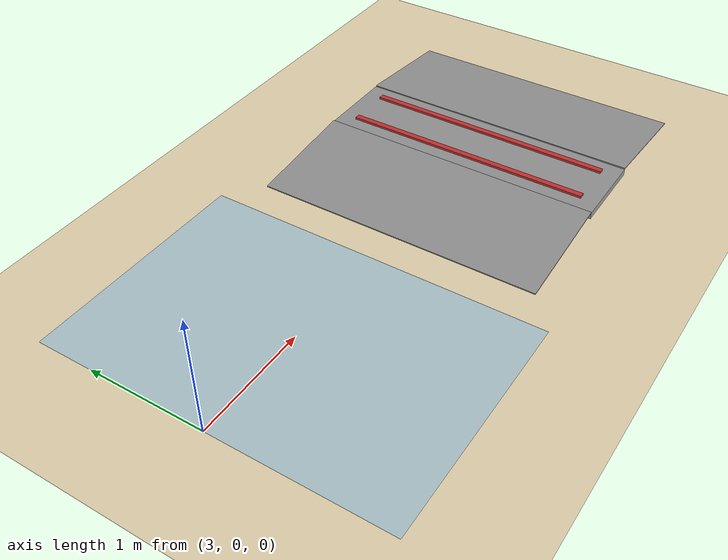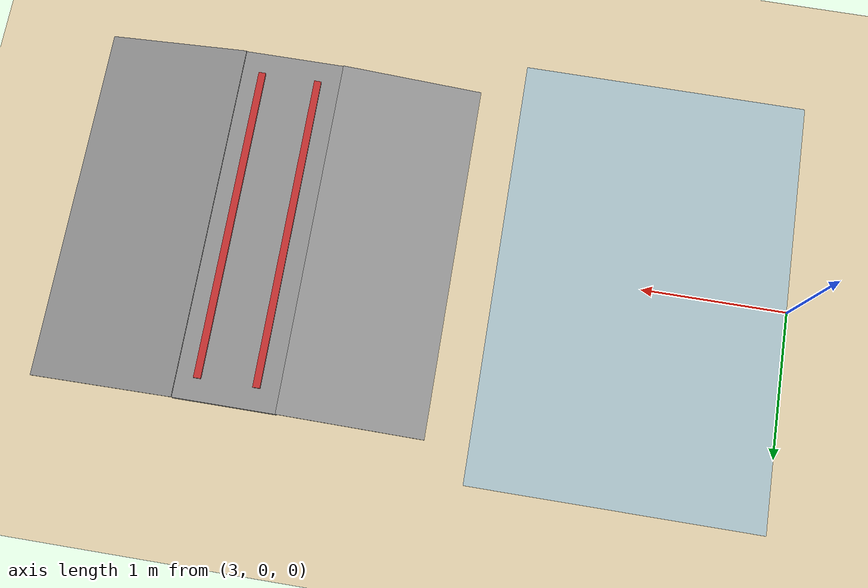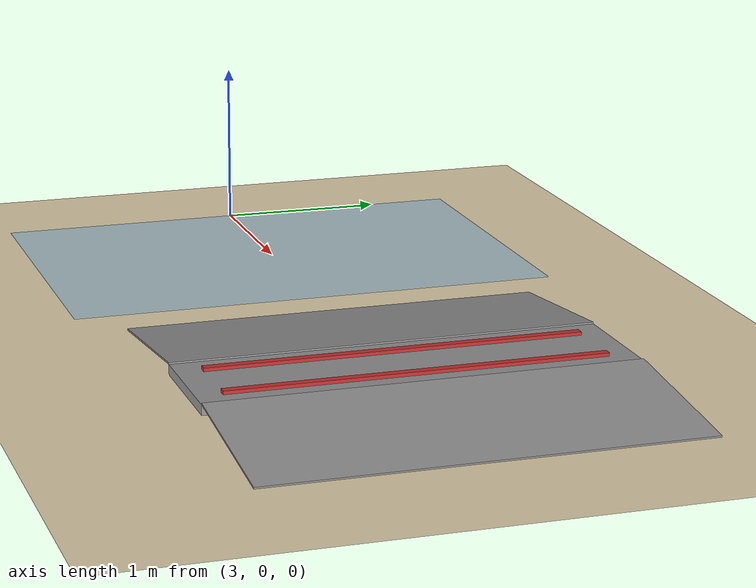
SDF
<sdf version="1.6">
 <world name="default">
  <plugin filename="gz-sim-physics-system" name="gz::sim::systems::Physics">
   <engine><filename>libgz-physics-dartsim-plugin.so</filename></engine>
  </plugin>
  <plugin filename="gz-sim-user-commands-system" name="gz::sim::systems::UserCommands"/>
  <plugin filename="gz-sim-scene-broadcaster-system" name="gz::sim::systems::SceneBroadcaster"/>
  <plugin filename="gz-sim-sensors-system" name="gz::sim::systems::Sensors">
   <render_engine>ogre2</render_engine>
  </plugin>
  <plugin filename="gz-sim-imu-system" name="gz::sim::systems::Imu"/>
  <gravity>0.0 0.0 -9.8</gravity>
  <physics name="8ms" type="dartsim">
   <max_step_size>0.008</max_step_size>
   <real_time_factor>1.0</real_time_factor>
  </physics>
  <scene>
   <ambient>0.4 0.4 0.4 1</ambient>
   <background>0.7 0.7 0.7 1</background>
   <shadows>false</shadows>
   <grid>false</grid>
   <origin_visual>false</origin_visual>
  </scene>
  <model name="ground_plane">
   <static>true</static>
   <link name="link">
    <collision name="collision">
     <geometry><plane><normal>0 0 1</normal><size>100 100</size></plane></geometry>
     <surface><friction><torsional><coefficient>0.0</coefficient></torsional></friction></surface>
    </collision>
    <visual name="visual">
     <geometry><plane><normal>0 0 1</normal><size>100 100</size></plane></geometry>
     <material>
      <ambient>0.92 0.85 0.7 1</ambient>
      <diffuse>0.92 0.85 0.7 1</diffuse>
      <specular>0.1 0.1 0.1 1</specular>
     </material>
    </visual>
   </link>
  </model>
  <model name="slippery_patch">
   <static>true</static>
   <pose>4 0 0.001 0 0 0</pose>
   <link name="link">
    <collision name="collision">
     <geometry><box><size>2.0 3.0 0.002</size></box></geometry>
     <surface><friction><ode><mu>0.001</mu><mu2>0.001</mu2></ode></friction></surface>
    </collision>
    <visual name="visual">
     <geometry><box><size>2.0 3.0 0.002</size></box></geometry>
     <material><ambient>0.6 0.8 0.95 0.6</ambient><diffuse>0.6 0.8 0.95 0.6</diffuse></material>
    </visual>
   </link>
  </model>
  <model name="small_ramp_up">
   <static>true</static>
   <pose>5.797260948 0 0.057236841 0 -0.10471975512 0</pose>
   <link name="link">
    <collision name="collision"><geometry><box><size>1.0 2.5 0.01</size></box></geometry></collision>
    <visual name="visual">
     <geometry><box><size>1.0 2.5 0.01</size></box></geometry>
     <material><ambient>0.6 0.6 0.6 1</ambient><diffuse>0.6 0.6 0.6 1</diffuse></material>
    </visual>
   </link>
  </model>
  <model name="small_ramp_platform">
   <static>true</static>
   <pose>6.644522 0 0.074528 0 0 0</pose>
   <link name="link">
    <collision name="collision"><geometry><box><size>0.7 2.5 0.06</size></box></geometry></collision>
    <visual name="visual">
     <geometry><box><size>0.7 2.5 0.06</size></box></geometry>
     <material><ambient>0.6 0.6 0.6 1</ambient><diffuse>0.6 0.6 0.6 1</diffuse></material>
    </visual>
   </link>
  </model>
  <model name="ridge_1">
   <static>true</static>
   <pose>6.45 0 0.114528 0 0 0</pose>
   <link name="link">
    <collision name="collision"><geometry><box><size>0.05 2.2 0.02</size></box></geometry></collision>
    <visual name="visual">
     <geometry><box><size>0.05 2.2 0.02</size></box></geometry>
     <material><ambient>0.8 0.2 0.2 1</ambient><diffuse>0.8 0.2 0.2 1</diffuse></material>
    </visual>
   </link>
  </model>
  <model name="ridge_2">
   <static>true</static>
   <pose>6.85 0 0.114528 0 0 0</pose>
   <link name="link">
    <collision name="collision"><geometry><box><size>0.05 2.2 0.02</size></box></geometry></collision>
    <visual name="visual">
     <geometry><box><size>0.05 2.2 0.02</size></box></geometry>
     <material><ambient>0.8 0.2 0.2 1</ambient><diffuse>0.8 0.2 0.2 1</diffuse></material>
    </visual>
   </link>
  </model>
  <model name="small_ramp_down">
   <static>true</static>
   <pose>7.491782843 0 0.057236841 0 0.10471975512 0</pose>
   <link name="link">
    <collision name="collision"><geometry><box><size>1.0 2.5 0.01</size></box></geometry></collision>
    <visual name="visual">
     <geometry><box><size>1.0 2.5 0.01</size></box></geometry>
     <material><ambient>0.6 0.6 0.6 1</ambient><diffuse>0.6 0.6 0.6 1</diffuse></material>
    </visual>
   </link>
  </model>
  <light name="sun" type="directional">
   <pose>0 0 10 0 -0 0</pose>
   <diffuse>0.8 0.8 0.8 1</diffuse>
   <specular>0.2 0.2 0.2 1</specular>
   <attenuation>
    <range>1000</range>
    <constant>0.9</constant>
    <linear>0.01</linear>
    <quadratic>0.001</quadratic>
   </attenuation>
   <direction>-0.5 0.1 -0.9</direction>
  </light>
 </world>
</sdf>
